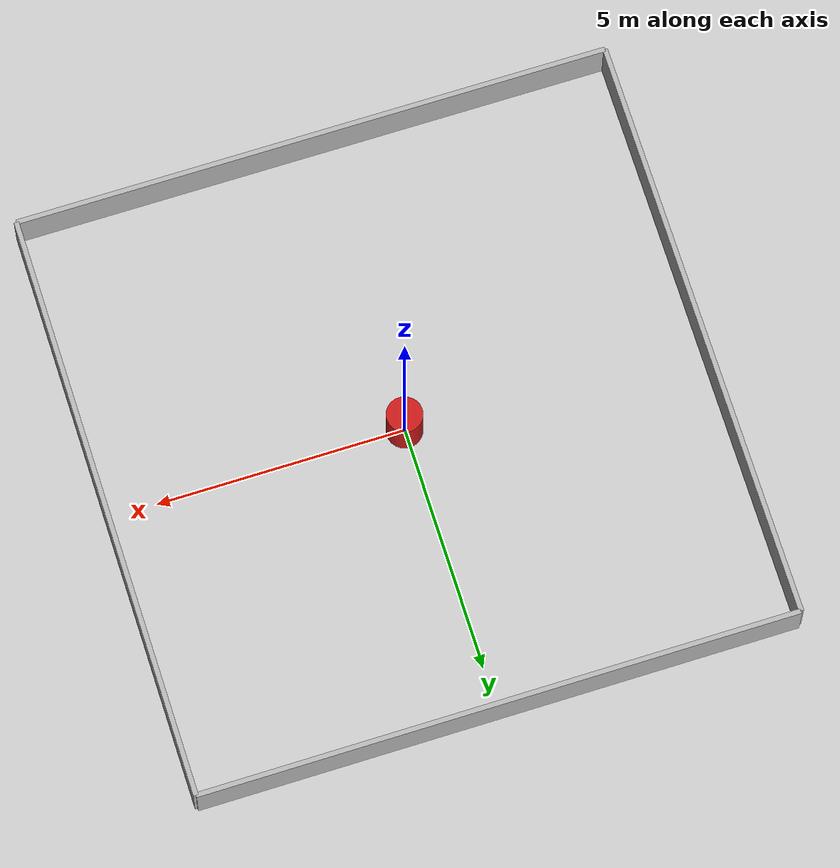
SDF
<?xml version="1.0" ?>
<sdf version="1.6">
  <world name="turtlebot_room">
    <include>
      <uri>model://sun</uri>
    </include>

    <include>
      <uri>model://ground_plane</uri>
    </include>

    <plugin name="gazebo_ros_state" filename="libgazebo_ros_state.so">
      <ros>
        <namespace>/gazebo</namespace>
      </ros>

      <update_rate>30.0</update_rate>
    </plugin>

    <model name="room_walls">
      <static>true</static>
      <link name="link">
        <visual name="north_wall">
          <pose>6 0 0.5 0 0 0</pose>
          <geometry><box><size>0.1 12 1</size></box></geometry>
        </visual>
        <collision name="north_wall_col">
          <pose>6 0 0.5 0 0 0</pose>
          <geometry><box><size>0.1 12 1</size></box></geometry>
        </collision>

        <visual name="south_wall">
          <pose>-6 0 0.5 0 0 0</pose>
          <geometry><box><size>0.1 12 1</size></box></geometry>
        </visual>
        <collision name="south_wall_col">
          <pose>-6 0 0.5 0 0 0</pose>
          <geometry><box><size>0.1 12 1</size></box></geometry>
        </collision>

        <visual name="east_wall">
          <pose>0 6 0.5 0 0 0</pose>
          <geometry><box><size>12 0.1 1</size></box></geometry>
        </visual>
        <collision name="east_wall_col">
          <pose>0 6 0.5 0 0 0</pose>
          <geometry><box><size>12 0.1 1</size></box></geometry>
        </collision>

        <visual name="west_wall">
          <pose>0 -6 0.5 0 0 0</pose>
          <geometry><box><size>12 0.1 1</size></box></geometry>
        </visual>
        <collision name="west_wall_col">
          <pose>0 -6 0.5 0 0 0</pose>
          <geometry><box><size>12 0.1 1</size></box></geometry>
        </collision>
      </link>
    </model>

    <model name="round_pillar">
      <static>true</static>
      <pose>0 0 0.5 0 0 0</pose>
      <link name="link">
        <collision name="collision">
          <geometry>
            <cylinder>
              <radius>0.36</radius>
              <length>1.0</length>
            </cylinder>
          </geometry>
        </collision>
        <visual name="visual">
          <geometry>
            <cylinder>
              <radius>0.36</radius>
              <length>1.0</length>
            </cylinder>
          </geometry>
          <material>
            <ambient>0.8 0.1 0.1 1</ambient>
          </material>
        </visual>
      </link>
    </model>

    <physics type="ode">
      <real_time_update_rate>1000.0</real_time_update_rate>
      <max_step_size>0.001</max_step_size>
    </physics>
  </world>
</sdf>
